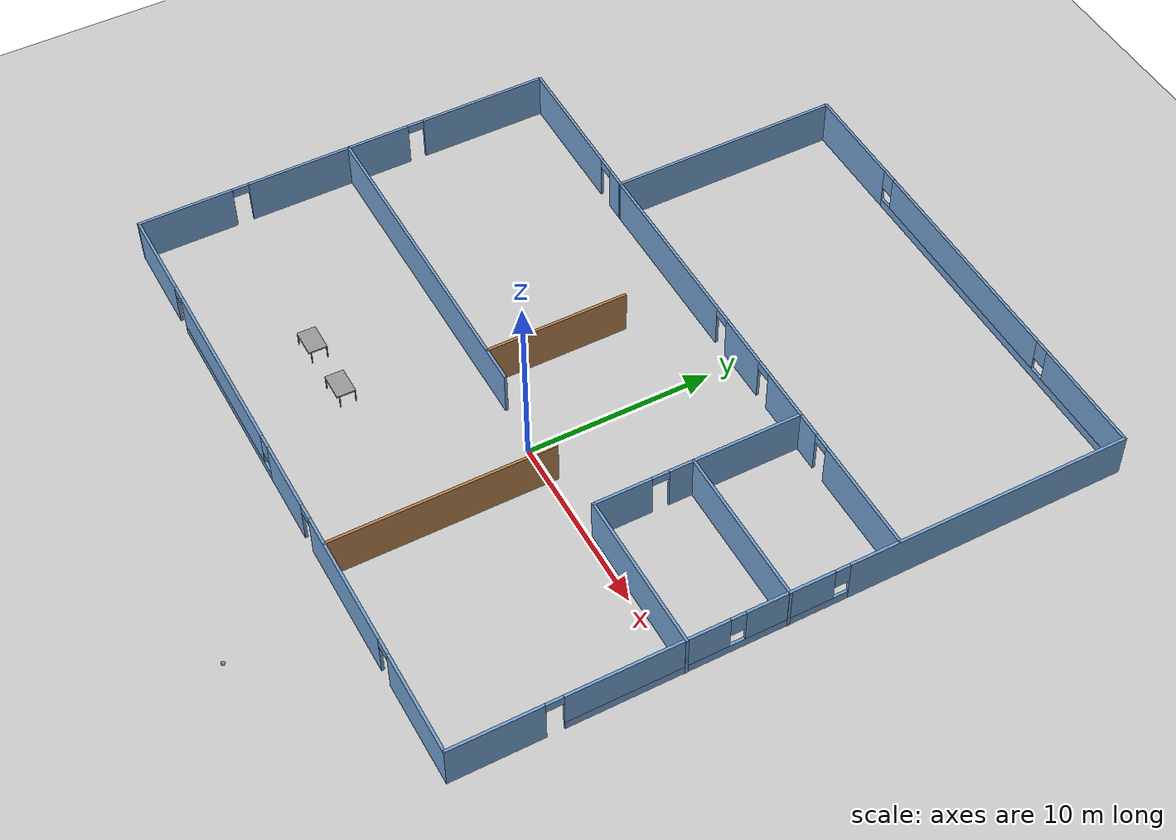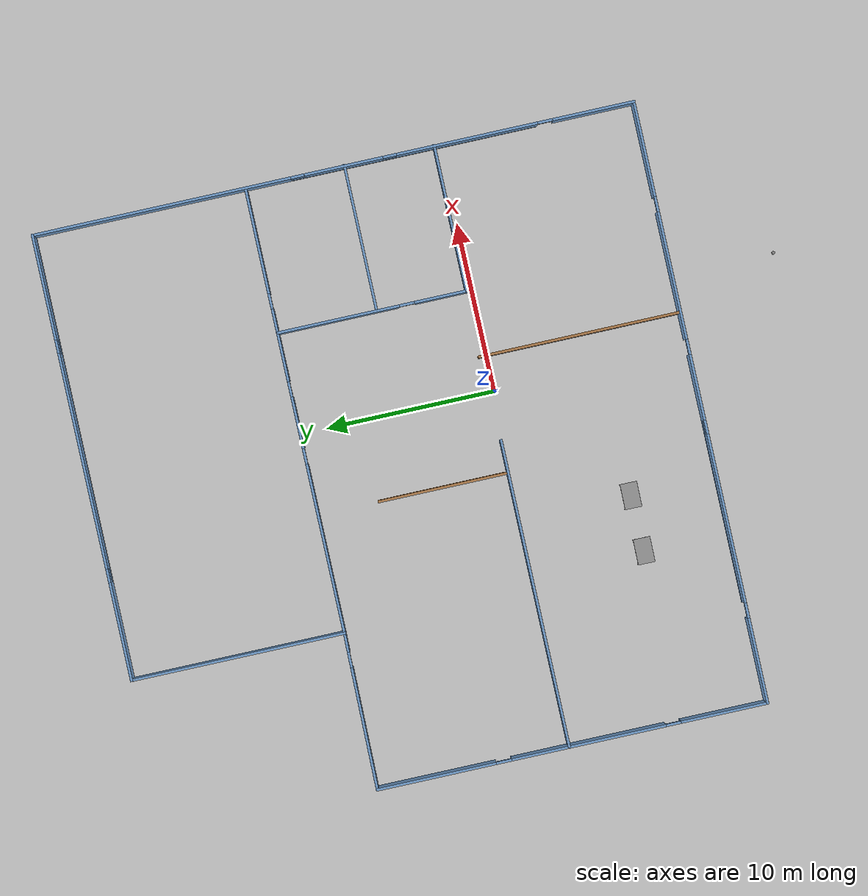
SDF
<sdf version="1.6">
 <world name="default">
  <light name="sun" type="directional">
   <pose>0 0 10 0 -0 0</pose>
   <diffuse>0.8 0.8 0.8 1</diffuse>
   <attenuation>
    <range>1000</range>
    <constant>0.9</constant>
    <linear>0.01</linear>
    <quadratic>0.001</quadratic>
   </attenuation>
   <direction>-0.5 0.1 -0.9</direction>
   <specular>0.1 0.1 0.1 1</specular>
  </light>
  <model name="ground_plane">
   <static>1</static>
   <link name="link">
    <collision name="collision">
     <geometry><plane><normal>0 0 1</normal><size>100 100</size></plane></geometry>
     <surface><friction><ode><mu>100</mu><mu2>50</mu2></ode></friction></surface>
    </collision>
    <visual name="visual">
     <cast_shadows>0</cast_shadows>
     <geometry><plane><normal>0 0 1</normal><size>100 100</size></plane></geometry>
     <material>
      <script><uri>file://media/materials/scripts/gazebo.material</uri><name>Gazebo/Grey</name></script>
     </material>
    </visual>
   </link>
  </model>
  <gravity>0 0 -9.8</gravity>
  <magnetic_field>6e-06 2.3e-05 -4.2e-05</magnetic_field>
  <atmosphere type="adiabatic"/>
  <physics name="default_physics" default="0" type="ode">
   <max_step_size>0.001</max_step_size>
   <real_time_factor>1</real_time_factor>
   <real_time_update_rate>1000</real_time_update_rate>
  </physics>
  <scene><ambient>0.4 0.4 0.4 1</ambient><background>0.7 0.7 0.7 1</background><shadows>1</shadows></scene>
  <audio><device>default</device></audio>
  <spherical_coordinates>
   <surface_model>EARTH_WGS84</surface_model>
   <latitude_deg>0</latitude_deg>
   <longitude_deg>0</longitude_deg>
   <elevation>0</elevation>
   <heading_deg>0</heading_deg>
  </spherical_coordinates>
  <model name="myhouse">
   <pose>-3.19949 6.33 0 0 -0 0</pose>
   <link name="Wall_0">
    <pose>4.61426 17.8 0 0 -0 0</pose>
    <visual name="Wall_0_Visual_0">
     <pose>-10.3159 0 1.25 0 -0 0</pose>
     <geometry><box><size>5.86818 0.15 2.5</size></box></geometry>
     <material>
      <script><uri>file://media/materials/scripts/gazebo.material</uri><name>Gazebo/Grey</name></script>
      <ambient>0.447059 0.623529 0.811765 1</ambient>
     </material>
     <meta><layer>0</layer></meta>
    </visual>
    <collision name="Wall_0_Collision_0">
     <geometry><box><size>5.86818 0.15 2.5</size></box></geometry>
     <pose>-10.3159 0 1.25 0 -0 0</pose>
    </collision>
    <visual name="Wall_0_Visual_1">
     <pose>2.93409 0 0.25 0 -0 0</pose>
     <geometry><box><size>20.6318 0.15 0.5</size></box></geometry>
     <material>
      <script><uri>file://media/materials/scripts/gazebo.material</uri><name>Gazebo/Grey</name></script>
      <ambient>0.447059 0.623529 0.811765 1</ambient>
     </material>
     <meta><layer>0</layer></meta>
    </visual>
    <collision name="Wall_0_Collision_1">
     <geometry><box><size>20.6318 0.15 0.5</size></box></geometry>
     <pose>2.93409 0 0.25 0 -0 0</pose>
    </collision>
    <visual name="Wall_0_Visual_2">
     <pose>-0.192398 0 1.5 0 -0 0</pose>
     <geometry><box><size>12.7788 0.15 2</size></box></geometry>
     <material>
      <script><uri>file://media/materials/scripts/gazebo.material</uri><name>Gazebo/Grey</name></script>
      <ambient>0.447059 0.623529 0.811765 1</ambient>
     </material>
     <meta><layer>0</layer></meta>
    </visual>
    <collision name="Wall_0_Collision_2">
     <geometry><box><size>12.7788 0.15 2</size></box></geometry>
     <pose>-0.192398 0 1.5 0 -0 0</pose>
    </collision>
    <visual name="Wall_0_Visual_3">
     <pose>10.1235 0 1.5 0 -0 0</pose>
     <geometry><box><size>6.25298 0.15 2</size></box></geometry>
     <material>
      <script><uri>file://media/materials/scripts/gazebo.material</uri><name>Gazebo/Grey</name></script>
      <ambient>0.447059 0.623529 0.811765 1</ambient>
     </material>
     <meta><layer>0</layer></meta>
    </visual>
    <collision name="Wall_0_Collision_3">
     <geometry><box><size>6.25298 0.15 2</size></box></geometry>
     <pose>10.1235 0 1.5 0 -0 0</pose>
    </collision>
    <visual name="Wall_0_Visual_4">
     <pose>-6.98182 0 1.9 0 -0 0</pose>
     <geometry><box><size>0.8 0.15 1.2</size></box></geometry>
     <material>
      <script><uri>file://media/materials/scripts/gazebo.material</uri><name>Gazebo/Grey</name></script>
      <ambient>0.447059 0.623529 0.811765 1</ambient>
     </material>
     <meta><layer>0</layer></meta>
    </visual>
    <collision name="Wall_0_Collision_4">
     <geometry><box><size>0.8 0.15 1.2</size></box></geometry>
     <pose>-6.98182 0 1.9 0 -0 0</pose>
    </collision>
    <visual name="Wall_0_Visual_5">
     <pose>6.59703 0 1.9 0 -0 0</pose>
     <geometry><box><size>0.8 0.15 1.2</size></box></geometry>
     <material>
      <script><uri>file://media/materials/scripts/gazebo.material</uri><name>Gazebo/Grey</name></script>
      <ambient>0.447059 0.623529 0.811765 1</ambient>
     </material>
     <meta><layer>0</layer></meta>
    </visual>
    <collision name="Wall_0_Collision_5">
     <geometry><box><size>0.8 0.15 1.2</size></box></geometry>
     <pose>6.59703 0 1.9 0 -0 0</pose>
    </collision>
   </link>
   <link name="Wall_1">
    <pose>17.7893 -0 0 0 -0 -1.5708</pose>
    <visual name="Wall_1_Visual_0">
     <pose>-10.1951 0 1.25 0 -0 0</pose>
     <geometry><box><size>15.3597 0.15 2.5</size></box></geometry>
     <material>
      <script><uri>file://media/materials/scripts/gazebo.material</uri><name>Gazebo/Grey</name></script>
      <ambient>0.447059 0.623529 0.811765 1</ambient>
     </material>
     <meta><layer>0</layer></meta>
    </visual>
    <collision name="Wall_1_Collision_0">
     <geometry><box><size>15.3597 0.15 2.5</size></box></geometry>
     <pose>-10.1951 0 1.25 0 -0 0</pose>
    </collision>
    <visual name="Wall_1_Visual_1">
     <pose>15.4336 0 1.25 0 -0 0</pose>
     <geometry><box><size>4.88286 0.15 2.5</size></box></geometry>
     <material>
      <script><uri>file://media/materials/scripts/gazebo.material</uri><name>Gazebo/Grey</name></script>
      <ambient>0.447059 0.623529 0.811765 1</ambient>
     </material>
     <meta><layer>0</layer></meta>
    </visual>
    <collision name="Wall_1_Collision_1">
     <geometry><box><size>4.88286 0.15 2.5</size></box></geometry>
     <pose>15.4336 0 1.25 0 -0 0</pose>
    </collision>
    <visual name="Wall_1_Visual_2">
     <pose>4.78844 0 0.25 0 -0 0</pose>
     <geometry><box><size>14.6074 0.15 0.5</size></box></geometry>
     <material>
      <script><uri>file://media/materials/scripts/gazebo.material</uri><name>Gazebo/Grey</name></script>
      <ambient>0.447059 0.623529 0.811765 1</ambient>
     </material>
     <meta><layer>0</layer></meta>
    </visual>
    <collision name="Wall_1_Collision_2">
     <geometry><box><size>14.6074 0.15 0.5</size></box></geometry>
     <pose>4.78844 0 0.25 0 -0 0</pose>
    </collision>
    <visual name="Wall_1_Visual_3">
     <pose>0.613666 0 1.5 0 -0 0</pose>
     <geometry><box><size>4.65784 0.15 2</size></box></geometry>
     <material>
      <script><uri>file://media/materials/scripts/gazebo.material</uri><name>Gazebo/Grey</name></script>
      <ambient>0.447059 0.623529 0.811765 1</ambient>
     </material>
     <meta><layer>0</layer></meta>
    </visual>
    <collision name="Wall_1_Collision_3">
     <geometry><box><size>4.65784 0.15 2</size></box></geometry>
     <pose>0.613666 0 1.5 0 -0 0</pose>
    </collision>
    <visual name="Wall_1_Visual_4">
     <pose>7.91736 0 1.5 0 -0 0</pose>
     <geometry><box><size>8.34956 0.15 2</size></box></geometry>
     <material>
      <script><uri>file://media/materials/scripts/gazebo.material</uri><name>Gazebo/Grey</name></script>
      <ambient>0.447059 0.623529 0.811765 1</ambient>
     </material>
     <meta><layer>0</layer></meta>
    </visual>
    <collision name="Wall_1_Collision_4">
     <geometry><box><size>8.34956 0.15 2</size></box></geometry>
     <pose>7.91736 0 1.5 0 -0 0</pose>
    </collision>
    <visual name="Wall_1_Visual_5">
     <pose>-2.11525 0 1.9 0 -0 0</pose>
     <geometry><box><size>0.8 0.15 1.2</size></box></geometry>
     <material>
      <script><uri>file://media/materials/scripts/gazebo.material</uri><name>Gazebo/Grey</name></script>
      <ambient>0.447059 0.623529 0.811765 1</ambient>
     </material>
     <meta><layer>0</layer></meta>
    </visual>
    <collision name="Wall_1_Collision_5">
     <geometry><box><size>0.8 0.15 1.2</size></box></geometry>
     <pose>-2.11525 0 1.9 0 -0 0</pose>
    </collision>
    <visual name="Wall_1_Visual_6">
     <pose>3.34259 0 1.9 0 -0 0</pose>
     <geometry><box><size>0.8 0.15 1.2</size></box></geometry>
     <material>
      <script><uri>file://media/materials/scripts/gazebo.material</uri><name>Gazebo/Grey</name></script>
      <ambient>0.447059 0.623529 0.811765 1</ambient>
     </material>
     <meta><layer>0</layer></meta>
    </visual>
    <collision name="Wall_1_Collision_6">
     <geometry><box><size>0.8 0.15 1.2</size></box></geometry>
     <pose>3.34259 0 1.9 0 -0 0</pose>
    </collision>
    <visual name="Wall_1_Visual_7">
     <pose>12.5421 0 2.25 0 -0 0</pose>
     <geometry><box><size>0.9 0.15 0.5</size></box></geometry>
     <material>
      <script><uri>file://media/materials/scripts/gazebo.material</uri><name>Gazebo/Grey</name></script>
      <ambient>0.447059 0.623529 0.811765 1</ambient>
     </material>
     <meta><layer>0</layer></meta>
    </visual>
    <collision name="Wall_1_Collision_7">
     <geometry><box><size>0.9 0.15 0.5</size></box></geometry>
     <pose>12.5421 0 2.25 0 -0 0</pose>
    </collision>
   </link>
   <link name="Wall_10">
    <pose>9.21154 -0.400105 0 0 -0 -1.5708</pose>
    <visual name="Wall_10_Visual_0">
     <pose>-2.03081 0 1.25 0 -0 0</pose>
     <geometry><box><size>7.26684 0.15 2.5</size></box></geometry>
     <material>
      <script><uri>file://media/materials/scripts/gazebo.material</uri><name>Gazebo/Grey</name></script>
      <ambient>0.447059 0.623529 0.811765 1</ambient>
     </material>
     <meta><layer>0</layer></meta>
    </visual>
    <collision name="Wall_10_Collision_0">
     <geometry><box><size>7.26684 0.15 2.5</size></box></geometry>
     <pose>-2.03081 0 1.25 0 -0 0</pose>
    </collision>
    <visual name="Wall_10_Visual_1">
     <pose>4.08342 0 1.25 0 -0 0</pose>
     <geometry><box><size>3.16161 0.15 2.5</size></box></geometry>
     <material>
      <script><uri>file://media/materials/scripts/gazebo.material</uri><name>Gazebo/Grey</name></script>
      <ambient>0.447059 0.623529 0.811765 1</ambient>
     </material>
     <meta><layer>0</layer></meta>
    </visual>
    <collision name="Wall_10_Collision_1">
     <geometry><box><size>3.16161 0.15 2.5</size></box></geometry>
     <pose>4.08342 0 1.25 0 -0 0</pose>
    </collision>
    <visual name="Wall_10_Visual_2">
     <pose>2.05262 0 2.25 0 -0 0</pose>
     <geometry><box><size>0.9 0.15 0.5</size></box></geometry>
     <material>
      <script><uri>file://media/materials/scripts/gazebo.material</uri><name>Gazebo/Grey</name></script>
      <ambient>0.447059 0.623529 0.811765 1</ambient>
     </material>
     <meta><layer>0</layer></meta>
    </visual>
    <collision name="Wall_10_Collision_2">
     <geometry><box><size>0.9 0.15 0.5</size></box></geometry>
     <pose>2.05262 0 2.25 0 -0 0</pose>
    </collision>
   </link>
   <link name="Wall_13">
    <collision name="Wall_13_Collision">
     <geometry><box><size>8.75 0.15 2.5</size></box></geometry>
     <pose>0 0 1.25 0 -0 0</pose>
    </collision>
    <visual name="Wall_13_Visual">
     <pose>0 0 1.25 0 -0 0</pose>
     <geometry><box><size>8.75 0.15 2.5</size></box></geometry>
     <material>
      <script><uri>file://media/materials/scripts/gazebo.material</uri><name>Gazebo/Grey</name></script>
      <ambient>0.447059 0.623529 0.811765 1</ambient>
     </material>
     <meta><layer>0</layer></meta>
    </visual>
    <pose>13.5115 -5.98933 0 0 -0 0</pose>
   </link>
   <link name="Wall_15">
    <collision name="Wall_15_Collision">
     <geometry><box><size>8.75 0.15 2.5</size></box></geometry>
     <pose>0 0 1.25 0 -0 0</pose>
    </collision>
    <visual name="Wall_15_Visual">
     <pose>0 0 1.25 0 -0 0</pose>
     <geometry><box><size>8.75 0.15 2.5</size></box></geometry>
     <material>
      <script><uri>file://media/materials/scripts/gazebo.material</uri><name>Gazebo/Grey</name></script>
      <ambient>0.447059 0.623529 0.811765 1</ambient>
     </material>
     <meta><layer>0</layer></meta>
    </visual>
    <pose>13.5114 -0.669808 0 0 -0 0</pose>
   </link>
   <link name="Wall_17">
    <collision name="Wall_17_Collision">
     <geometry><box><size>18.25 0.15 2.5</size></box></geometry>
     <pose>0 0 1.25 0 -0 0</pose>
    </collision>
    <visual name="Wall_17_Visual">
     <pose>0 0 1.25 0 -0 0</pose>
     <geometry><box><size>18.25 0.15 2.5</size></box></geometry>
     <material>
      <script><uri>file://media/materials/scripts/gazebo.material</uri><name>Gazebo/Grey</name></script>
      <ambient>0.447059 0.623529 0.811765 1</ambient>
     </material>
     <meta><layer>0</layer></meta>
    </visual>
    <pose>-8.72356 -6.06182 0 0 -0 0</pose>
   </link>
   <link name="Wall_19">
    <collision name="Wall_19_Collision">
     <geometry><box><size>7.75 0.15 2.5</size></box></geometry>
     <pose>0 0 1.25 0 -0 0</pose>
    </collision>
    <visual name="Wall_19_Visual">
     <pose>0 0 1.25 0 -0 0</pose>
     <geometry><box><size>7.75 0.15 2.5</size></box></geometry>
     <material>
      <script><uri>file://media/materials/scripts/gazebo.material</uri><name>Gazebo/Wood</name></script>
      <ambient>1 1 1 1</ambient>
     </material>
     <meta><layer>0</layer></meta>
    </visual>
    <pose>-1.57819 -2.2167 0 0 -0 1.5708</pose>
   </link>
   <link name="Wall_2">
    <pose>-0.010735 -17.8 0 0 -0 3.14159</pose>
    <visual name="Wall_2_Visual_0">
     <pose>-15.0259 0 1.25 0 -0 0</pose>
     <geometry><box><size>5.69813 0.15 2.5</size></box></geometry>
     <material>
      <script><uri>file://media/materials/scripts/gazebo.material</uri><name>Gazebo/Grey</name></script>
      <ambient>0.447059 0.623529 0.811765 1</ambient>
     </material>
     <meta><layer>0</layer></meta>
    </visual>
    <collision name="Wall_2_Collision_0">
     <geometry><box><size>5.69813 0.15 2.5</size></box></geometry>
     <pose>-15.0259 0 1.25 0 -0 0</pose>
    </collision>
    <visual name="Wall_2_Visual_1">
     <pose>-7.50561 0 1.25 0 -0 0</pose>
     <geometry><box><size>7.54251 0.15 2.5</size></box></geometry>
     <material>
      <script><uri>file://media/materials/scripts/gazebo.material</uri><name>Gazebo/Grey</name></script>
      <ambient>0.447059 0.623529 0.811765 1</ambient>
     </material>
     <meta><layer>0</layer></meta>
    </visual>
    <collision name="Wall_2_Collision_1">
     <geometry><box><size>7.54251 0.15 2.5</size></box></geometry>
     <pose>-7.50561 0 1.25 0 -0 0</pose>
    </collision>
    <visual name="Wall_2_Visual_2">
     <pose>-0.885398 0 1.25 0 -0 0</pose>
     <geometry><box><size>3.89792 0.15 2.5</size></box></geometry>
     <material>
      <script><uri>file://media/materials/scripts/gazebo.material</uri><name>Gazebo/Grey</name></script>
      <ambient>0.447059 0.623529 0.811765 1</ambient>
     </material>
     <meta><layer>0</layer></meta>
    </visual>
    <collision name="Wall_2_Collision_2">
     <geometry><box><size>3.89792 0.15 2.5</size></box></geometry>
     <pose>-0.885398 0 1.25 0 -0 0</pose>
    </collision>
    <visual name="Wall_2_Visual_3">
     <pose>15.3234 0 1.25 0 -0 0</pose>
     <geometry><box><size>5.10327 0.15 2.5</size></box></geometry>
     <material>
      <script><uri>file://media/materials/scripts/gazebo.material</uri><name>Gazebo/Grey</name></script>
      <ambient>0.447059 0.623529 0.811765 1</ambient>
     </material>
     <meta><layer>0</layer></meta>
    </visual>
    <collision name="Wall_2_Collision_3">
     <geometry><box><size>5.10327 0.15 2.5</size></box></geometry>
     <pose>15.3234 0 1.25 0 -0 0</pose>
    </collision>
    <visual name="Wall_2_Visual_4">
     <pose>6.46765 0 0.25 0 -0 0</pose>
     <geometry><box><size>10.8082 0.15 0.5</size></box></geometry>
     <material>
      <script><uri>file://media/materials/scripts/gazebo.material</uri><name>Gazebo/Grey</name></script>
      <ambient>0.447059 0.623529 0.811765 1</ambient>
     </material>
     <meta><layer>0</layer></meta>
    </visual>
    <collision name="Wall_2_Collision_4">
     <geometry><box><size>10.8082 0.15 0.5</size></box></geometry>
     <pose>6.46765 0 0.25 0 -0 0</pose>
    </collision>
    <visual name="Wall_2_Visual_5">
     <pose>6.86765 0 1.5 0 -0 0</pose>
     <geometry><box><size>10.0082 0.15 2</size></box></geometry>
     <material>
      <script><uri>file://media/materials/scripts/gazebo.material</uri><name>Gazebo/Grey</name></script>
      <ambient>0.447059 0.623529 0.811765 1</ambient>
     </material>
     <meta><layer>0</layer></meta>
    </visual>
    <collision name="Wall_2_Collision_5">
     <geometry><box><size>10.0082 0.15 2</size></box></geometry>
     <pose>6.86765 0 1.5 0 -0 0</pose>
    </collision>
    <visual name="Wall_2_Visual_6">
     <pose>1.46356 0 1.9 0 -0 0</pose>
     <geometry><box><size>0.8 0.15 1.2</size></box></geometry>
     <material>
      <script><uri>file://media/materials/scripts/gazebo.material</uri><name>Gazebo/Grey</name></script>
      <ambient>0.447059 0.623529 0.811765 1</ambient>
     </material>
     <meta><layer>0</layer></meta>
    </visual>
    <collision name="Wall_2_Collision_6">
     <geometry><box><size>0.8 0.15 1.2</size></box></geometry>
     <pose>1.46356 0 1.9 0 -0 0</pose>
    </collision>
    <visual name="Wall_2_Visual_7">
     <pose>-11.7269 0 2.25 0 -0 0</pose>
     <geometry><box><size>0.9 0.15 0.5</size></box></geometry>
     <material>
      <script><uri>file://media/materials/scripts/gazebo.material</uri><name>Gazebo/Grey</name></script>
      <ambient>0.447059 0.623529 0.811765 1</ambient>
     </material>
     <meta><layer>0</layer></meta>
    </visual>
    <collision name="Wall_2_Collision_7">
     <geometry><box><size>0.9 0.15 0.5</size></box></geometry>
     <pose>-11.7269 0 2.25 0 -0 0</pose>
    </collision>
    <visual name="Wall_2_Visual_8">
     <pose>-3.28436 0 2.25 0 -0 0</pose>
     <geometry><box><size>0.9 0.15 0.5</size></box></geometry>
     <material>
      <script><uri>file://media/materials/scripts/gazebo.material</uri><name>Gazebo/Grey</name></script>
      <ambient>0.447059 0.623529 0.811765 1</ambient>
     </material>
     <meta><layer>0</layer></meta>
    </visual>
    <collision name="Wall_2_Collision_8">
     <geometry><box><size>0.9 0.15 0.5</size></box></geometry>
     <pose>-3.28436 0 2.25 0 -0 0</pose>
    </collision>
    <visual name="Wall_2_Visual_9">
     <pose>12.3217 0 2.25 0 -0 0</pose>
     <geometry><box><size>0.9 0.15 0.5</size></box></geometry>
     <material>
      <script><uri>file://media/materials/scripts/gazebo.material</uri><name>Gazebo/Grey</name></script>
      <ambient>0.447059 0.623529 0.811765 1</ambient>
     </material>
     <meta><layer>0</layer></meta>
    </visual>
    <collision name="Wall_2_Collision_9">
     <geometry><box><size>0.9 0.15 0.5</size></box></geometry>
     <pose>12.3217 0 2.25 0 -0 0</pose>
    </collision>
   </link>
   <link name="Wall_23">
    <collision name="Wall_23_Collision">
     <geometry><box><size>12 0.15 2.5</size></box></geometry>
     <pose>0 0 1.25 0 -0 0</pose>
    </collision>
    <visual name="Wall_23_Visual">
     <pose>0 0 1.25 0 -0 0</pose>
     <geometry><box><size>12 0.15 2.5</size></box></geometry>
     <material>
      <script><uri>file://media/materials/scripts/gazebo.material</uri><name>Gazebo/Wood</name></script>
      <ambient>1 1 1 1</ambient>
     </material>
     <meta><layer>0</layer></meta>
    </visual>
    <pose>5.32796 -11.8207 0 0 -0 1.5708</pose>
   </link>
   <link name="Wall_3">
    <pose>-17.8107 -6.25 0 0 -0 1.5708</pose>
    <visual name="Wall_3_Visual_0">
     <pose>-9.02802 0 1.25 0 -0 0</pose>
     <geometry><box><size>5.19397 0.15 2.5</size></box></geometry>
     <material>
      <script><uri>file://media/materials/scripts/gazebo.material</uri><name>Gazebo/Grey</name></script>
      <ambient>0.447059 0.623529 0.811765 1</ambient>
     </material>
     <meta><layer>0</layer></meta>
    </visual>
    <collision name="Wall_3_Collision_0">
     <geometry><box><size>5.19397 0.15 2.5</size></box></geometry>
     <pose>-9.02802 0 1.25 0 -0 0</pose>
    </collision>
    <visual name="Wall_3_Visual_1">
     <pose>-0.961315 0 1.25 0 -0 0</pose>
     <geometry><box><size>9.13944 0.15 2.5</size></box></geometry>
     <material>
      <script><uri>file://media/materials/scripts/gazebo.material</uri><name>Gazebo/Grey</name></script>
      <ambient>0.447059 0.623529 0.811765 1</ambient>
     </material>
     <meta><layer>0</layer></meta>
    </visual>
    <collision name="Wall_3_Collision_1">
     <geometry><box><size>9.13944 0.15 2.5</size></box></geometry>
     <pose>-0.961315 0 1.25 0 -0 0</pose>
    </collision>
    <visual name="Wall_3_Visual_2">
     <pose>8.0667 0 1.25 0 -0 0</pose>
     <geometry><box><size>7.1166 0.15 2.5</size></box></geometry>
     <material>
      <script><uri>file://media/materials/scripts/gazebo.material</uri><name>Gazebo/Grey</name></script>
      <ambient>0.447059 0.623529 0.811765 1</ambient>
     </material>
     <meta><layer>0</layer></meta>
    </visual>
    <collision name="Wall_3_Collision_2">
     <geometry><box><size>7.1166 0.15 2.5</size></box></geometry>
     <pose>8.0667 0 1.25 0 -0 0</pose>
    </collision>
    <visual name="Wall_3_Visual_3">
     <pose>-5.98103 0 2.25 0 -0 0</pose>
     <geometry><box><size>0.9 0.15 0.5</size></box></geometry>
     <material>
      <script><uri>file://media/materials/scripts/gazebo.material</uri><name>Gazebo/Grey</name></script>
      <ambient>0.447059 0.623529 0.811765 1</ambient>
     </material>
     <meta><layer>0</layer></meta>
    </visual>
    <collision name="Wall_3_Collision_3">
     <geometry><box><size>0.9 0.15 0.5</size></box></geometry>
     <pose>-5.98103 0 2.25 0 -0 0</pose>
    </collision>
    <visual name="Wall_3_Visual_4">
     <pose>4.0584 0 2.25 0 -0 0</pose>
     <geometry><box><size>0.9 0.15 0.5</size></box></geometry>
     <material>
      <script><uri>file://media/materials/scripts/gazebo.material</uri><name>Gazebo/Grey</name></script>
      <ambient>0.447059 0.623529 0.811765 1</ambient>
     </material>
     <meta><layer>0</layer></meta>
    </visual>
    <collision name="Wall_3_Collision_4">
     <geometry><box><size>0.9 0.15 0.5</size></box></geometry>
     <pose>4.0584 0 2.25 0 -0 0</pose>
    </collision>
   </link>
   <link name="Wall_5">
    <collision name="Wall_5_Collision">
     <geometry><box><size>12.75 0.15 2.5</size></box></geometry>
     <pose>0 0 1.25 0 -0 0</pose>
    </collision>
    <visual name="Wall_5_Visual">
     <pose>0 0 1.25 0 -0 0</pose>
     <geometry><box><size>12.75 0.15 2.5</size></box></geometry>
     <material>
      <script><uri>file://media/materials/scripts/gazebo.material</uri><name>Gazebo/Grey</name></script>
      <ambient>0.447059 0.623529 0.811765 1</ambient>
     </material>
     <meta><layer>0</layer></meta>
    </visual>
    <pose>-8.56073 11.5 0 0 -0 -1.5708</pose>
   </link>
   <link name="Wall_6">
    <pose>-13.1857 5.25 0 0 -0 3.13078</pose>
    <visual name="Wall_6_Visual_0">
     <pose>-4.09582 0 1.25 0 -0 0</pose>
     <geometry><box><size>1.2089 0.15 2.5</size></box></geometry>
     <material>
      <script><uri>file://media/materials/scripts/gazebo.material</uri><name>Gazebo/Grey</name></script>
      <ambient>0.447059 0.623529 0.811765 1</ambient>
     </material>
     <meta><layer>0</layer></meta>
    </visual>
    <collision name="Wall_6_Collision_0">
     <geometry><box><size>1.2089 0.15 2.5</size></box></geometry>
     <pose>-4.09582 0 1.25 0 -0 0</pose>
    </collision>
    <visual name="Wall_6_Visual_1">
     <pose>1.05445 0 1.25 0 -0 0</pose>
     <geometry><box><size>7.29164 0.15 2.5</size></box></geometry>
     <material>
      <script><uri>file://media/materials/scripts/gazebo.material</uri><name>Gazebo/Grey</name></script>
      <ambient>0.447059 0.623529 0.811765 1</ambient>
     </material>
     <meta><layer>0</layer></meta>
    </visual>
    <collision name="Wall_6_Collision_1">
     <geometry><box><size>7.29164 0.15 2.5</size></box></geometry>
     <pose>1.05445 0 1.25 0 -0 0</pose>
    </collision>
    <visual name="Wall_6_Visual_2">
     <pose>-3.04137 0 2.25 0 -0 0</pose>
     <geometry><box><size>0.9 0.15 0.5</size></box></geometry>
     <material>
      <script><uri>file://media/materials/scripts/gazebo.material</uri><name>Gazebo/Grey</name></script>
      <ambient>0.447059 0.623529 0.811765 1</ambient>
     </material>
     <meta><layer>0</layer></meta>
    </visual>
    <collision name="Wall_6_Collision_2">
     <geometry><box><size>0.9 0.15 0.5</size></box></geometry>
     <pose>-3.04137 0 2.25 0 -0 0</pose>
    </collision>
   </link>
   <link name="Wall_8">
    <pose>4.61426 5.2 0 0 -0 0</pose>
    <visual name="Wall_8_Visual_0">
     <pose>-8.20743 0 1.25 0 -0 0</pose>
     <geometry><box><size>10.0851 0.15 2.5</size></box></geometry>
     <material>
      <script><uri>file://media/materials/scripts/gazebo.material</uri><name>Gazebo/Grey</name></script>
      <ambient>0.447059 0.623529 0.811765 1</ambient>
     </material>
     <meta><layer>0</layer></meta>
    </visual>
    <collision name="Wall_8_Collision_0">
     <geometry><box><size>10.0851 0.15 2.5</size></box></geometry>
     <pose>-8.20743 0 1.25 0 -0 0</pose>
    </collision>
    <visual name="Wall_8_Visual_1">
     <pose>-0.725872 0 1.25 0 -0 0</pose>
     <geometry><box><size>3.07799 0.15 2.5</size></box></geometry>
     <material>
      <script><uri>file://media/materials/scripts/gazebo.material</uri><name>Gazebo/Grey</name></script>
      <ambient>0.447059 0.623529 0.811765 1</ambient>
     </material>
     <meta><layer>0</layer></meta>
    </visual>
    <collision name="Wall_8_Collision_1">
     <geometry><box><size>3.07799 0.15 2.5</size></box></geometry>
     <pose>-0.725872 0 1.25 0 -0 0</pose>
    </collision>
    <visual name="Wall_8_Visual_2">
     <pose>3.86689 0 1.25 0 -0 0</pose>
     <geometry><box><size>4.30753 0.15 2.5</size></box></geometry>
     <material>
      <script><uri>file://media/materials/scripts/gazebo.material</uri><name>Gazebo/Grey</name></script>
      <ambient>0.447059 0.623529 0.811765 1</ambient>
     </material>
     <meta><layer>0</layer></meta>
    </visual>
    <collision name="Wall_8_Collision_2">
     <geometry><box><size>4.30753 0.15 2.5</size></box></geometry>
     <pose>3.86689 0 1.25 0 -0 0</pose>
    </collision>
    <visual name="Wall_8_Visual_3">
     <pose>10.0853 0 1.25 0 -0 0</pose>
     <geometry><box><size>6.32935 0.15 2.5</size></box></geometry>
     <material>
      <script><uri>file://media/materials/scripts/gazebo.material</uri><name>Gazebo/Grey</name></script>
      <ambient>0.447059 0.623529 0.811765 1</ambient>
     </material>
     <meta><layer>0</layer></meta>
    </visual>
    <collision name="Wall_8_Collision_3">
     <geometry><box><size>6.32935 0.15 2.5</size></box></geometry>
     <pose>10.0853 0 1.25 0 -0 0</pose>
    </collision>
    <visual name="Wall_8_Visual_4">
     <pose>-2.71487 0 2.25 0 -0 0</pose>
     <geometry><box><size>0.9 0.15 0.5</size></box></geometry>
     <material>
      <script><uri>file://media/materials/scripts/gazebo.material</uri><name>Gazebo/Grey</name></script>
      <ambient>0.447059 0.623529 0.811765 1</ambient>
     </material>
     <meta><layer>0</layer></meta>
    </visual>
    <collision name="Wall_8_Collision_4">
     <geometry><box><size>0.9 0.15 0.5</size></box></geometry>
     <pose>-2.71487 0 2.25 0 -0 0</pose>
    </collision>
    <visual name="Wall_8_Visual_5">
     <pose>1.26312 0 2.25 0 -0 0</pose>
     <geometry><box><size>0.9 0.15 0.5</size></box></geometry>
     <material>
      <script><uri>file://media/materials/scripts/gazebo.material</uri><name>Gazebo/Grey</name></script>
      <ambient>0.447059 0.623529 0.811765 1</ambient>
     </material>
     <meta><layer>0</layer></meta>
    </visual>
    <collision name="Wall_8_Collision_5">
     <geometry><box><size>0.9 0.15 0.5</size></box></geometry>
     <pose>1.26312 0 2.25 0 -0 0</pose>
    </collision>
    <visual name="Wall_8_Visual_6">
     <pose>6.47065 0 2.25 0 -0 0</pose>
     <geometry><box><size>0.9 0.15 0.5</size></box></geometry>
     <material>
      <script><uri>file://media/materials/scripts/gazebo.material</uri><name>Gazebo/Grey</name></script>
      <ambient>0.447059 0.623529 0.811765 1</ambient>
     </material>
     <meta><layer>0</layer></meta>
    </visual>
    <collision name="Wall_8_Collision_6">
     <geometry><box><size>0.9 0.15 0.5</size></box></geometry>
     <pose>6.47065 0 2.25 0 -0 0</pose>
    </collision>
   </link>
   <static>1</static>
  </model>
  <model name="mydesk">
   <link name="link_0">
    <inertial>
     <mass>1</mass>
     <inertia>
      <ixx>0.166667</ixx>
      <ixy>0</ixy>
      <ixz>0</ixz>
      <iyy>0.166667</iyy>
      <iyz>0</iyz>
      <izz>0.166667</izz>
     </inertia>
    </inertial>
    <pose>0 0.022 0.32 0 -0 0</pose>
    <visual name="visual">
     <geometry><box><size>1.5 1 0.08</size></box></geometry>
     <material>
      <lighting>1</lighting>
      <script><uri>file://media/materials/scripts/gazebo.material</uri><name>Gazebo/Grey</name></script>
      <shader type="vertex"><normal_map>__default__</normal_map></shader>
      <ambient>0.3 0.3 0.3 1</ambient>
      <diffuse>0.7 0.7 0.7 1</diffuse>
      <specular>0.01 0.01 0.01 1</specular>
      <emissive>0 0 0 1</emissive>
     </material>
    </visual>
    <collision name="collision">
     <geometry><box><size>1.5 1 0.08</size></box></geometry>
     <surface>
      <friction>
       <ode><mu>1</mu><mu2>1</mu2><fdir1>0 0 0</fdir1><slip1>0</slip1><slip2>0</slip2></ode>
       <torsional>
        <coefficient>1</coefficient>
        <patch_radius>0</patch_radius>
        <surface_radius>0</surface_radius>
        <use_patch_radius>1</use_patch_radius>
        <ode><slip>0</slip></ode>
       </torsional>
      </friction>
      <bounce><restitution_coefficient>0</restitution_coefficient><threshold>1e+06</threshold></bounce>
      <contact>
       <collide_without_contact>0</collide_without_contact>
       <collide_without_contact_bitmask>1</collide_without_contact_bitmask>
       <collide_bitmask>1</collide_bitmask>
       <ode>
        <soft_cfm>0</soft_cfm>
        <soft_erp>0.2</soft_erp>
        <kp>1e+13</kp>
        <kd>1</kd>
        <max_vel>0.01</max_vel>
        <min_depth>0</min_depth>
       </ode>
       <bullet>
        <split_impulse>1</split_impulse>
        <split_impulse_penetration_threshold>-0.01</split_impulse_penetration_threshold>
        <soft_cfm>0</soft_cfm>
        <soft_erp>0.2</soft_erp>
        <kp>1e+13</kp>
        <kd>1</kd>
       </bullet>
      </contact>
     </surface>
    </collision>
   </link>
   <link name="link_1">
    <inertial>
     <mass>1</mass>
     <inertia><ixx>0.145833</ixx><ixy>0</ixy><ixz>0</ixz><iyy>0.145833</iyy><iyz>0</iyz><izz>0.125</izz></inertia>
     <pose>0 0 -0.02 0 -0 0</pose>
    </inertial>
    <pose>-0.72 0.382 -0.08 0 -0 0</pose>
    <visual name="visual">
     <geometry><cylinder><radius>0.03</radius><length>0.8</length></cylinder></geometry>
     <material>
      <lighting>1</lighting>
      <script><uri>file://media/materials/scripts/gazebo.material</uri><name>Gazebo/Grey</name></script>
      <shader type="vertex"><normal_map>__default__</normal_map></shader>
      <ambient>0.3 0.3 0.3 1</ambient>
      <diffuse>0.7 0.7 0.7 1</diffuse>
      <specular>0.01 0.01 0.01 1</specular>
      <emissive>0 0 0 1</emissive>
     </material>
    </visual>
    <collision name="collision">
     <geometry><cylinder><radius>0.03</radius><length>0.8</length></cylinder></geometry>
     <surface>
      <friction>
       <ode><mu>1</mu><mu2>1</mu2><fdir1>0 0 0</fdir1><slip1>0</slip1><slip2>0</slip2></ode>
       <torsional>
        <coefficient>1</coefficient>
        <patch_radius>0</patch_radius>
        <surface_radius>0</surface_radius>
        <use_patch_radius>1</use_patch_radius>
        <ode><slip>0</slip></ode>
       </torsional>
      </friction>
      <bounce><restitution_coefficient>0</restitution_coefficient><threshold>1e+06</threshold></bounce>
      <contact>
       <collide_without_contact>0</collide_without_contact>
       <collide_without_contact_bitmask>1</collide_without_contact_bitmask>
       <collide_bitmask>1</collide_bitmask>
       <ode>
        <soft_cfm>0</soft_cfm>
        <soft_erp>0.2</soft_erp>
        <kp>1e+13</kp>
        <kd>1</kd>
        <max_vel>0.01</max_vel>
        <min_depth>0</min_depth>
       </ode>
       <bullet>
        <split_impulse>1</split_impulse>
        <split_impulse_penetration_threshold>-0.01</split_impulse_penetration_threshold>
        <soft_cfm>0</soft_cfm>
        <soft_erp>0.2</soft_erp>
        <kp>1e+13</kp>
        <kd>1</kd>
       </bullet>
      </contact>
     </surface>
    </collision>
   </link>
   <link name="link_1_clone">
    <inertial>
     <mass>1</mass>
     <inertia><ixx>0.145833</ixx><ixy>0</ixy><ixz>0</ixz><iyy>0.145833</iyy><iyz>0</iyz><izz>0.125</izz></inertia>
     <pose>0 0 -0.02 0 -0 0</pose>
    </inertial>
    <pose>-0.72 -0.448 -0.08 0 -0 0</pose>
    <visual name="visual">
     <geometry><cylinder><radius>0.03</radius><length>0.8</length></cylinder></geometry>
     <material>
      <lighting>1</lighting>
      <script><uri>file://media/materials/scripts/gazebo.material</uri><name>Gazebo/Grey</name></script>
      <shader type="vertex"><normal_map>__default__</normal_map></shader>
      <ambient>0.3 0.3 0.3 1</ambient>
      <diffuse>0.7 0.7 0.7 1</diffuse>
      <specular>0.01 0.01 0.01 1</specular>
      <emissive>0 0 0 1</emissive>
     </material>
    </visual>
    <collision name="collision">
     <geometry><cylinder><radius>0.03</radius><length>0.8</length></cylinder></geometry>
     <surface>
      <friction>
       <ode><mu>1</mu><mu2>1</mu2><fdir1>0 0 0</fdir1><slip1>0</slip1><slip2>0</slip2></ode>
       <torsional>
        <coefficient>1</coefficient>
        <patch_radius>0</patch_radius>
        <surface_radius>0</surface_radius>
        <use_patch_radius>1</use_patch_radius>
        <ode><slip>0</slip></ode>
       </torsional>
      </friction>
      <bounce><restitution_coefficient>0</restitution_coefficient><threshold>1e+06</threshold></bounce>
      <contact>
       <collide_without_contact>0</collide_without_contact>
       <collide_without_contact_bitmask>1</collide_without_contact_bitmask>
       <collide_bitmask>1</collide_bitmask>
       <ode>
        <soft_cfm>0</soft_cfm>
        <soft_erp>0.2</soft_erp>
        <kp>1e+13</kp>
        <kd>1</kd>
        <max_vel>0.01</max_vel>
        <min_depth>0</min_depth>
       </ode>
       <bullet>
        <split_impulse>1</split_impulse>
        <split_impulse_penetration_threshold>-0.01</split_impulse_penetration_threshold>
        <soft_cfm>0</soft_cfm>
        <soft_erp>0.2</soft_erp>
        <kp>1e+13</kp>
        <kd>1</kd>
       </bullet>
      </contact>
     </surface>
    </collision>
   </link>
   <link name="link_1_clone_0">
    <inertial>
     <mass>1</mass>
     <inertia><ixx>0.145833</ixx><ixy>0</ixy><ixz>0</ixz><iyy>0.145833</iyy><iyz>0</iyz><izz>0.125</izz></inertia>
     <pose>0 0 -0.02 0 -0 0</pose>
    </inertial>
    <pose>0.72 -0.448 -0.08 0 -0 0</pose>
    <visual name="visual">
     <geometry><cylinder><radius>0.03</radius><length>0.8</length></cylinder></geometry>
     <material>
      <lighting>1</lighting>
      <script><uri>file://media/materials/scripts/gazebo.material</uri><name>Gazebo/Grey</name></script>
      <shader type="vertex"><normal_map>__default__</normal_map></shader>
      <ambient>0.3 0.3 0.3 1</ambient>
      <diffuse>0.7 0.7 0.7 1</diffuse>
      <specular>0.01 0.01 0.01 1</specular>
      <emissive>0 0 0 1</emissive>
     </material>
    </visual>
    <collision name="collision">
     <geometry><cylinder><radius>0.03</radius><length>0.8</length></cylinder></geometry>
     <surface>
      <friction>
       <ode><mu>1</mu><mu2>1</mu2><fdir1>0 0 0</fdir1><slip1>0</slip1><slip2>0</slip2></ode>
       <torsional>
        <coefficient>1</coefficient>
        <patch_radius>0</patch_radius>
        <surface_radius>0</surface_radius>
        <use_patch_radius>1</use_patch_radius>
        <ode><slip>0</slip></ode>
       </torsional>
      </friction>
      <bounce><restitution_coefficient>0</restitution_coefficient><threshold>1e+06</threshold></bounce>
      <contact>
       <collide_without_contact>0</collide_without_contact>
       <collide_without_contact_bitmask>1</collide_without_contact_bitmask>
       <collide_bitmask>1</collide_bitmask>
       <ode>
        <soft_cfm>0</soft_cfm>
        <soft_erp>0.2</soft_erp>
        <kp>1e+13</kp>
        <kd>1</kd>
        <max_vel>0.01</max_vel>
        <min_depth>0</min_depth>
       </ode>
       <bullet>
        <split_impulse>1</split_impulse>
        <split_impulse_penetration_threshold>-0.01</split_impulse_penetration_threshold>
        <soft_cfm>0</soft_cfm>
        <soft_erp>0.2</soft_erp>
        <kp>1e+13</kp>
        <kd>1</kd>
       </bullet>
      </contact>
     </surface>
    </collision>
   </link>
   <link name="link_1_clone_1">
    <inertial>
     <mass>1</mass>
     <inertia><ixx>0.145833</ixx><ixy>0</ixy><ixz>0</ixz><iyy>0.145833</iyy><iyz>0</iyz><izz>0.125</izz></inertia>
     <pose>0 0 -0.02 0 -0 0</pose>
    </inertial>
    <pose>0.72 0.492 -0.08 0 -0 0</pose>
    <visual name="visual">
     <geometry><cylinder><radius>0.03</radius><length>0.8</length></cylinder></geometry>
     <material>
      <lighting>1</lighting>
      <script><uri>file://media/materials/scripts/gazebo.material</uri><name>Gazebo/Grey</name></script>
      <shader type="vertex"><normal_map>__default__</normal_map></shader>
      <ambient>0.3 0.3 0.3 1</ambient>
      <diffuse>0.7 0.7 0.7 1</diffuse>
      <specular>0.01 0.01 0.01 1</specular>
      <emissive>0 0 0 1</emissive>
     </material>
    </visual>
    <collision name="collision">
     <geometry><cylinder><radius>0.03</radius><length>0.8</length></cylinder></geometry>
     <surface>
      <friction>
       <ode><mu>1</mu><mu2>1</mu2><fdir1>0 0 0</fdir1><slip1>0</slip1><slip2>0</slip2></ode>
       <torsional>
        <coefficient>1</coefficient>
        <patch_radius>0</patch_radius>
        <surface_radius>0</surface_radius>
        <use_patch_radius>1</use_patch_radius>
        <ode><slip>0</slip></ode>
       </torsional>
      </friction>
      <bounce><restitution_coefficient>0</restitution_coefficient><threshold>1e+06</threshold></bounce>
      <contact>
       <collide_without_contact>0</collide_without_contact>
       <collide_without_contact_bitmask>1</collide_without_contact_bitmask>
       <collide_bitmask>1</collide_bitmask>
       <ode>
        <soft_cfm>0</soft_cfm>
        <soft_erp>0.2</soft_erp>
        <kp>1e+13</kp>
        <kd>1</kd>
        <max_vel>0.01</max_vel>
        <min_depth>0</min_depth>
       </ode>
       <bullet>
        <split_impulse>1</split_impulse>
        <split_impulse_penetration_threshold>-0.01</split_impulse_penetration_threshold>
        <soft_cfm>0</soft_cfm>
        <soft_erp>0.2</soft_erp>
        <kp>1e+13</kp>
        <kd>1</kd>
       </bullet>
      </contact>
     </surface>
    </collision>
   </link>
   <joint name="link_0_JOINT_0" type="fixed">
    <parent>link_0</parent>
    <child>link_1_clone</child>
    <physics>
     <ode><limit><cfm>0</cfm><erp>0.2</erp></limit><suspension><cfm>0</cfm><erp>0.2</erp></suspension></ode>
    </physics>
   </joint>
   <joint name="link_0_JOINT_1" type="fixed">
    <parent>link_0</parent>
    <child>link_1_clone_1</child>
    <physics>
     <ode><limit><cfm>0</cfm><erp>0.2</erp></limit><suspension><cfm>0</cfm><erp>0.2</erp></suspension></ode>
    </physics>
   </joint>
   <joint name="link_0_JOINT_2" type="fixed">
    <parent>link_0</parent>
    <child>link_1_clone_0</child>
    <physics>
     <ode><limit><cfm>0</cfm><erp>0.2</erp></limit><suspension><cfm>0</cfm><erp>0.2</erp></suspension></ode>
    </physics>
   </joint>
   <joint name="link_0_JOINT_3" type="fixed">
    <parent>link_0</parent>
    <child>link_1</child>
    <physics>
     <ode><limit><cfm>0</cfm><erp>0.2</erp></limit><suspension><cfm>0</cfm><erp>0.2</erp></suspension></ode>
    </physics>
   </joint>
   <static>0</static>
   <pose>-7.61693 -6.40397 0.48 0 -0 3.13368</pose>
  </model>
  <model name="mydesk_clone">
   <link name="link_0">
    <inertial>
     <mass>1</mass>
     <inertia>
      <ixx>0.166667</ixx>
      <ixy>0</ixy>
      <ixz>0</ixz>
      <iyy>0.166667</iyy>
      <iyz>0</iyz>
      <izz>0.166667</izz>
     </inertia>
    </inertial>
    <pose>0 0.022 0.32 0 -0 0</pose>
    <visual name="visual">
     <geometry><box><size>1.5 1 0.08</size></box></geometry>
     <material>
      <lighting>1</lighting>
      <script><uri>file://media/materials/scripts/gazebo.material</uri><name>Gazebo/Grey</name></script>
      <shader type="vertex"><normal_map>__default__</normal_map></shader>
      <ambient>0.3 0.3 0.3 1</ambient>
      <diffuse>0.7 0.7 0.7 1</diffuse>
      <specular>0.01 0.01 0.01 1</specular>
      <emissive>0 0 0 1</emissive>
     </material>
    </visual>
    <collision name="collision">
     <geometry><box><size>1.5 1 0.08</size></box></geometry>
     <surface>
      <friction>
       <ode><mu>1</mu><mu2>1</mu2><fdir1>0 0 0</fdir1><slip1>0</slip1><slip2>0</slip2></ode>
       <torsional>
        <coefficient>1</coefficient>
        <patch_radius>0</patch_radius>
        <surface_radius>0</surface_radius>
        <use_patch_radius>1</use_patch_radius>
        <ode><slip>0</slip></ode>
       </torsional>
      </friction>
      <bounce><restitution_coefficient>0</restitution_coefficient><threshold>1e+06</threshold></bounce>
      <contact>
       <collide_without_contact>0</collide_without_contact>
       <collide_without_contact_bitmask>1</collide_without_contact_bitmask>
       <collide_bitmask>1</collide_bitmask>
       <ode>
        <soft_cfm>0</soft_cfm>
        <soft_erp>0.2</soft_erp>
        <kp>1e+13</kp>
        <kd>1</kd>
        <max_vel>0.01</max_vel>
        <min_depth>0</min_depth>
       </ode>
       <bullet>
        <split_impulse>1</split_impulse>
        <split_impulse_penetration_threshold>-0.01</split_impulse_penetration_threshold>
        <soft_cfm>0</soft_cfm>
        <soft_erp>0.2</soft_erp>
        <kp>1e+13</kp>
        <kd>1</kd>
       </bullet>
      </contact>
     </surface>
    </collision>
   </link>
   <link name="link_1">
    <inertial>
     <mass>1</mass>
     <inertia><ixx>0.145833</ixx><ixy>0</ixy><ixz>0</ixz><iyy>0.145833</iyy><iyz>0</iyz><izz>0.125</izz></inertia>
     <pose>0 0 -0.02 0 -0 0</pose>
    </inertial>
    <pose>-0.72 0.382 -0.08 0 -0 0</pose>
    <visual name="visual">
     <geometry><cylinder><radius>0.03</radius><length>0.8</length></cylinder></geometry>
     <material>
      <lighting>1</lighting>
      <script><uri>file://media/materials/scripts/gazebo.material</uri><name>Gazebo/Grey</name></script>
      <shader type="vertex"><normal_map>__default__</normal_map></shader>
      <ambient>0.3 0.3 0.3 1</ambient>
      <diffuse>0.7 0.7 0.7 1</diffuse>
      <specular>0.01 0.01 0.01 1</specular>
      <emissive>0 0 0 1</emissive>
     </material>
    </visual>
    <collision name="collision">
     <geometry><cylinder><radius>0.03</radius><length>0.8</length></cylinder></geometry>
     <surface>
      <friction>
       <ode><mu>1</mu><mu2>1</mu2><fdir1>0 0 0</fdir1><slip1>0</slip1><slip2>0</slip2></ode>
       <torsional>
        <coefficient>1</coefficient>
        <patch_radius>0</patch_radius>
        <surface_radius>0</surface_radius>
        <use_patch_radius>1</use_patch_radius>
        <ode><slip>0</slip></ode>
       </torsional>
      </friction>
      <bounce><restitution_coefficient>0</restitution_coefficient><threshold>1e+06</threshold></bounce>
      <contact>
       <collide_without_contact>0</collide_without_contact>
       <collide_without_contact_bitmask>1</collide_without_contact_bitmask>
       <collide_bitmask>1</collide_bitmask>
       <ode>
        <soft_cfm>0</soft_cfm>
        <soft_erp>0.2</soft_erp>
        <kp>1e+13</kp>
        <kd>1</kd>
        <max_vel>0.01</max_vel>
        <min_depth>0</min_depth>
       </ode>
       <bullet>
        <split_impulse>1</split_impulse>
        <split_impulse_penetration_threshold>-0.01</split_impulse_penetration_threshold>
        <soft_cfm>0</soft_cfm>
        <soft_erp>0.2</soft_erp>
        <kp>1e+13</kp>
        <kd>1</kd>
       </bullet>
      </contact>
     </surface>
    </collision>
   </link>
   <link name="link_1_clone">
    <inertial>
     <mass>1</mass>
     <inertia><ixx>0.145833</ixx><ixy>0</ixy><ixz>0</ixz><iyy>0.145833</iyy><iyz>0</iyz><izz>0.125</izz></inertia>
     <pose>0 0 -0.02 0 -0 0</pose>
    </inertial>
    <pose>-0.72 -0.448 -0.08 0 -0 0</pose>
    <visual name="visual">
     <geometry><cylinder><radius>0.03</radius><length>0.8</length></cylinder></geometry>
     <material>
      <lighting>1</lighting>
      <script><uri>file://media/materials/scripts/gazebo.material</uri><name>Gazebo/Grey</name></script>
      <shader type="vertex"><normal_map>__default__</normal_map></shader>
      <ambient>0.3 0.3 0.3 1</ambient>
      <diffuse>0.7 0.7 0.7 1</diffuse>
      <specular>0.01 0.01 0.01 1</specular>
      <emissive>0 0 0 1</emissive>
     </material>
    </visual>
    <collision name="collision">
     <geometry><cylinder><radius>0.03</radius><length>0.8</length></cylinder></geometry>
     <surface>
      <friction>
       <ode><mu>1</mu><mu2>1</mu2><fdir1>0 0 0</fdir1><slip1>0</slip1><slip2>0</slip2></ode>
       <torsional>
        <coefficient>1</coefficient>
        <patch_radius>0</patch_radius>
        <surface_radius>0</surface_radius>
        <use_patch_radius>1</use_patch_radius>
        <ode><slip>0</slip></ode>
       </torsional>
      </friction>
      <bounce><restitution_coefficient>0</restitution_coefficient><threshold>1e+06</threshold></bounce>
      <contact>
       <collide_without_contact>0</collide_without_contact>
       <collide_without_contact_bitmask>1</collide_without_contact_bitmask>
       <collide_bitmask>1</collide_bitmask>
       <ode>
        <soft_cfm>0</soft_cfm>
        <soft_erp>0.2</soft_erp>
        <kp>1e+13</kp>
        <kd>1</kd>
        <max_vel>0.01</max_vel>
        <min_depth>0</min_depth>
       </ode>
       <bullet>
        <split_impulse>1</split_impulse>
        <split_impulse_penetration_threshold>-0.01</split_impulse_penetration_threshold>
        <soft_cfm>0</soft_cfm>
        <soft_erp>0.2</soft_erp>
        <kp>1e+13</kp>
        <kd>1</kd>
       </bullet>
      </contact>
     </surface>
    </collision>
   </link>
   <link name="link_1_clone_0">
    <inertial>
     <mass>1</mass>
     <inertia><ixx>0.145833</ixx><ixy>0</ixy><ixz>0</ixz><iyy>0.145833</iyy><iyz>0</iyz><izz>0.125</izz></inertia>
     <pose>0 0 -0.02 0 -0 0</pose>
    </inertial>
    <pose>0.72 -0.448 -0.08 0 -0 0</pose>
    <visual name="visual">
     <geometry><cylinder><radius>0.03</radius><length>0.8</length></cylinder></geometry>
     <material>
      <lighting>1</lighting>
      <script><uri>file://media/materials/scripts/gazebo.material</uri><name>Gazebo/Grey</name></script>
      <shader type="vertex"><normal_map>__default__</normal_map></shader>
      <ambient>0.3 0.3 0.3 1</ambient>
      <diffuse>0.7 0.7 0.7 1</diffuse>
      <specular>0.01 0.01 0.01 1</specular>
      <emissive>0 0 0 1</emissive>
     </material>
    </visual>
    <collision name="collision">
     <geometry><cylinder><radius>0.03</radius><length>0.8</length></cylinder></geometry>
     <surface>
      <friction>
       <ode><mu>1</mu><mu2>1</mu2><fdir1>0 0 0</fdir1><slip1>0</slip1><slip2>0</slip2></ode>
       <torsional>
        <coefficient>1</coefficient>
        <patch_radius>0</patch_radius>
        <surface_radius>0</surface_radius>
        <use_patch_radius>1</use_patch_radius>
        <ode><slip>0</slip></ode>
       </torsional>
      </friction>
      <bounce><restitution_coefficient>0</restitution_coefficient><threshold>1e+06</threshold></bounce>
      <contact>
       <collide_without_contact>0</collide_without_contact>
       <collide_without_contact_bitmask>1</collide_without_contact_bitmask>
       <collide_bitmask>1</collide_bitmask>
       <ode>
        <soft_cfm>0</soft_cfm>
        <soft_erp>0.2</soft_erp>
        <kp>1e+13</kp>
        <kd>1</kd>
        <max_vel>0.01</max_vel>
        <min_depth>0</min_depth>
       </ode>
       <bullet>
        <split_impulse>1</split_impulse>
        <split_impulse_penetration_threshold>-0.01</split_impulse_penetration_threshold>
        <soft_cfm>0</soft_cfm>
        <soft_erp>0.2</soft_erp>
        <kp>1e+13</kp>
        <kd>1</kd>
       </bullet>
      </contact>
     </surface>
    </collision>
   </link>
   <link name="link_1_clone_1">
    <inertial>
     <mass>1</mass>
     <inertia><ixx>0.145833</ixx><ixy>0</ixy><ixz>0</ixz><iyy>0.145833</iyy><iyz>0</iyz><izz>0.125</izz></inertia>
     <pose>0 0 -0.02 0 -0 0</pose>
    </inertial>
    <pose>0.72 0.492 -0.08 0 -0 0</pose>
    <visual name="visual">
     <geometry><cylinder><radius>0.03</radius><length>0.8</length></cylinder></geometry>
     <material>
      <lighting>1</lighting>
      <script><uri>file://media/materials/scripts/gazebo.material</uri><name>Gazebo/Grey</name></script>
      <shader type="vertex"><normal_map>__default__</normal_map></shader>
      <ambient>0.3 0.3 0.3 1</ambient>
      <diffuse>0.7 0.7 0.7 1</diffuse>
      <specular>0.01 0.01 0.01 1</specular>
      <emissive>0 0 0 1</emissive>
     </material>
    </visual>
    <collision name="collision">
     <geometry><cylinder><radius>0.03</radius><length>0.8</length></cylinder></geometry>
     <surface>
      <friction>
       <ode><mu>1</mu><mu2>1</mu2><fdir1>0 0 0</fdir1><slip1>0</slip1><slip2>0</slip2></ode>
       <torsional>
        <coefficient>1</coefficient>
        <patch_radius>0</patch_radius>
        <surface_radius>0</surface_radius>
        <use_patch_radius>1</use_patch_radius>
        <ode><slip>0</slip></ode>
       </torsional>
      </friction>
      <bounce><restitution_coefficient>0</restitution_coefficient><threshold>1e+06</threshold></bounce>
      <contact>
       <collide_without_contact>0</collide_without_contact>
       <collide_without_contact_bitmask>1</collide_without_contact_bitmask>
       <collide_bitmask>1</collide_bitmask>
       <ode>
        <soft_cfm>0</soft_cfm>
        <soft_erp>0.2</soft_erp>
        <kp>1e+13</kp>
        <kd>1</kd>
        <max_vel>0.01</max_vel>
        <min_depth>0</min_depth>
       </ode>
       <bullet>
        <split_impulse>1</split_impulse>
        <split_impulse_penetration_threshold>-0.01</split_impulse_penetration_threshold>
        <soft_cfm>0</soft_cfm>
        <soft_erp>0.2</soft_erp>
        <kp>1e+13</kp>
        <kd>1</kd>
       </bullet>
      </contact>
     </surface>
    </collision>
   </link>
   <joint name="link_0_JOINT_0" type="fixed">
    <parent>link_0</parent>
    <child>link_1_clone</child>
    <physics>
     <ode><limit><cfm>0</cfm><erp>0.2</erp></limit><suspension><cfm>0</cfm><erp>0.2</erp></suspension></ode>
    </physics>
   </joint>
   <joint name="link_0_JOINT_1" type="fixed">
    <parent>link_0</parent>
    <child>link_1_clone_1</child>
    <physics>
     <ode><limit><cfm>0</cfm><erp>0.2</erp></limit><suspension><cfm>0</cfm><erp>0.2</erp></suspension></ode>
    </physics>
   </joint>
   <joint name="link_0_JOINT_2" type="fixed">
    <parent>link_0</parent>
    <child>link_1_clone_0</child>
    <physics>
     <ode><limit><cfm>0</cfm><erp>0.2</erp></limit><suspension><cfm>0</cfm><erp>0.2</erp></suspension></ode>
    </physics>
   </joint>
   <joint name="link_0_JOINT_3" type="fixed">
    <parent>link_0</parent>
    <child>link_1</child>
    <physics>
     <ode><limit><cfm>0</cfm><erp>0.2</erp></limit><suspension><cfm>0</cfm><erp>0.2</erp></suspension></ode>
    </physics>
   </joint>
   <static>0</static>
   <pose>-10.9128 -6.45348 0.48 0 -0 3.13368</pose>
  </model>
  <model name="small_ball">
   <link name="link_0">
    <inertial>
     <mass>1</mass>
     <inertia><ixx>0.1</ixx><ixy>0</ixy><ixz>0</ixz><iyy>0.1</iyy><iyz>0</iyz><izz>0.1</izz></inertia>
    </inertial>
    <visual name="visual">
     <geometry><sphere><radius>0.1</radius></sphere></geometry>
     <material>
      <lighting>1</lighting>
      <script><uri>file://media/materials/scripts/gazebo.material</uri><name>Gazebo/Grey</name></script>
      <shader type="vertex"><normal_map>__default__</normal_map></shader>
      <ambient>1 1 1 1</ambient>
      <diffuse>1 1 1 1</diffuse>
      <specular>1 1 1 1</specular>
      <emissive>1 1 1 1</emissive>
     </material>
    </visual>
    <collision name="collision">
     <geometry><sphere><radius>0.1</radius></sphere></geometry>
     <surface>
      <friction>
       <ode><mu>1</mu><mu2>1</mu2><fdir1>0 0 0</fdir1><slip1>0</slip1><slip2>0</slip2></ode>
       <torsional>
        <coefficient>1</coefficient>
        <patch_radius>0</patch_radius>
        <surface_radius>0</surface_radius>
        <use_patch_radius>1</use_patch_radius>
        <ode><slip>0</slip></ode>
       </torsional>
      </friction>
      <bounce><restitution_coefficient>0</restitution_coefficient><threshold>1e+06</threshold></bounce>
      <contact>
       <collide_without_contact>0</collide_without_contact>
       <collide_without_contact_bitmask>1</collide_without_contact_bitmask>
       <collide_bitmask>1</collide_bitmask>
       <ode>
        <soft_cfm>0</soft_cfm>
        <soft_erp>0.2</soft_erp>
        <kp>1e+13</kp>
        <kd>1</kd>
        <max_vel>0.01</max_vel>
        <min_depth>0</min_depth>
       </ode>
       <bullet>
        <split_impulse>1</split_impulse>
        <split_impulse_penetration_threshold>-0.01</split_impulse_penetration_threshold>
        <soft_cfm>0</soft_cfm>
        <soft_erp>0.2</soft_erp>
        <kp>1e+13</kp>
        <kd>1</kd>
       </bullet>
      </contact>
     </surface>
    </collision>
   </link>
   <static>0</static>
   <pose>4.35491 -17.6163 0.1 0 -0 0</pose>
  </model>
 </world>
</sdf>
